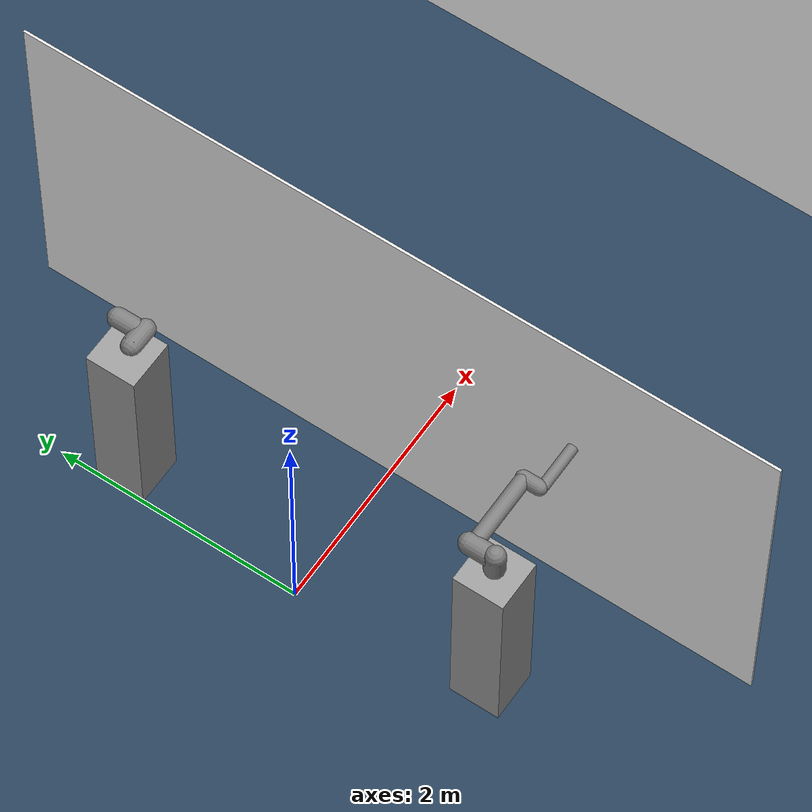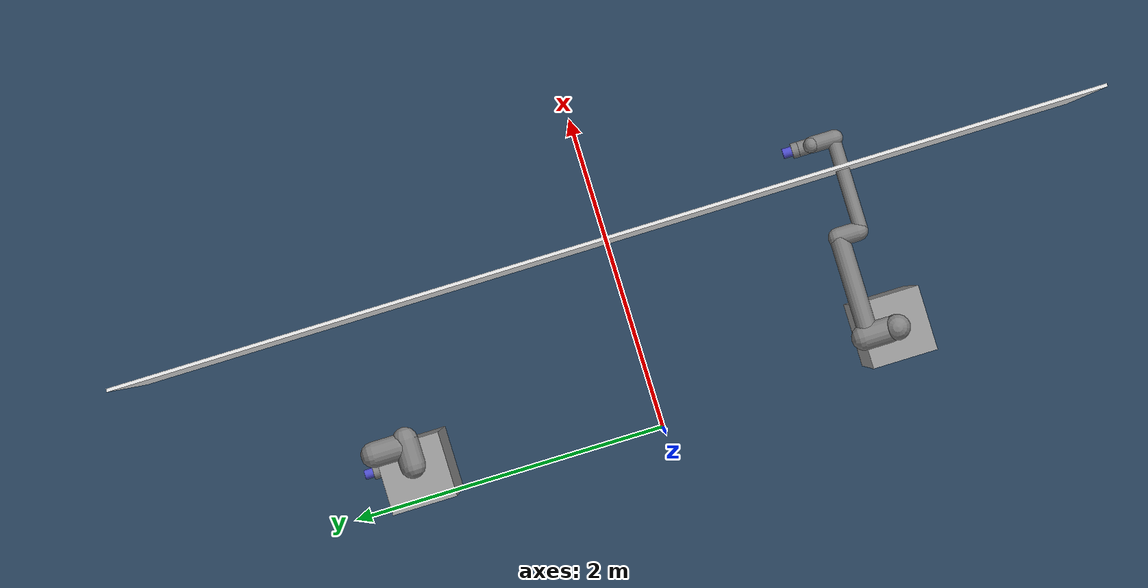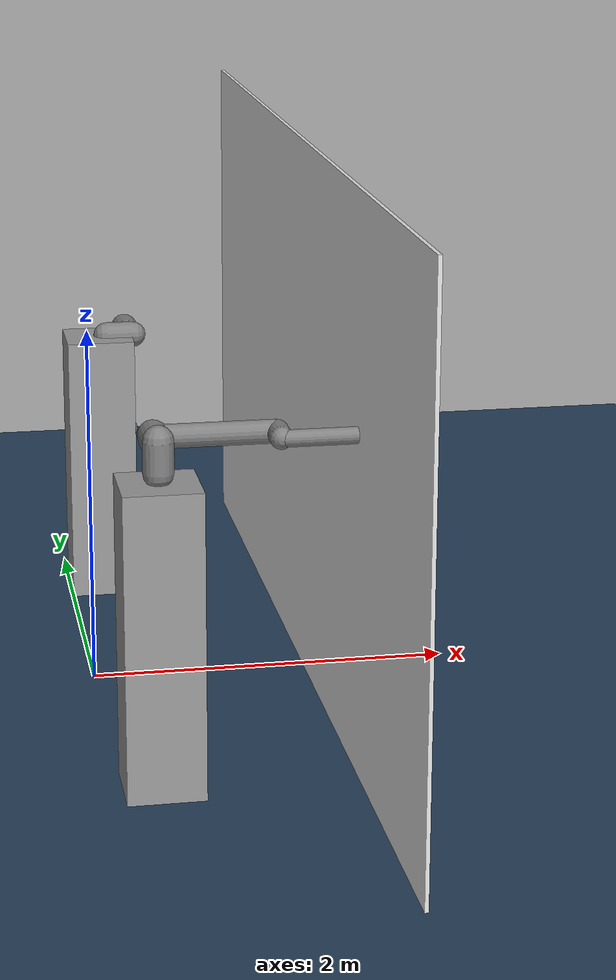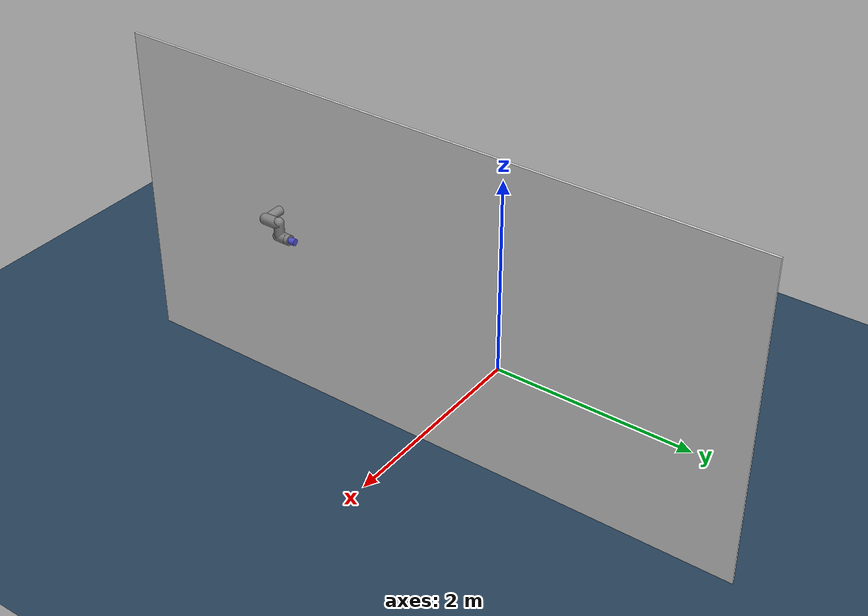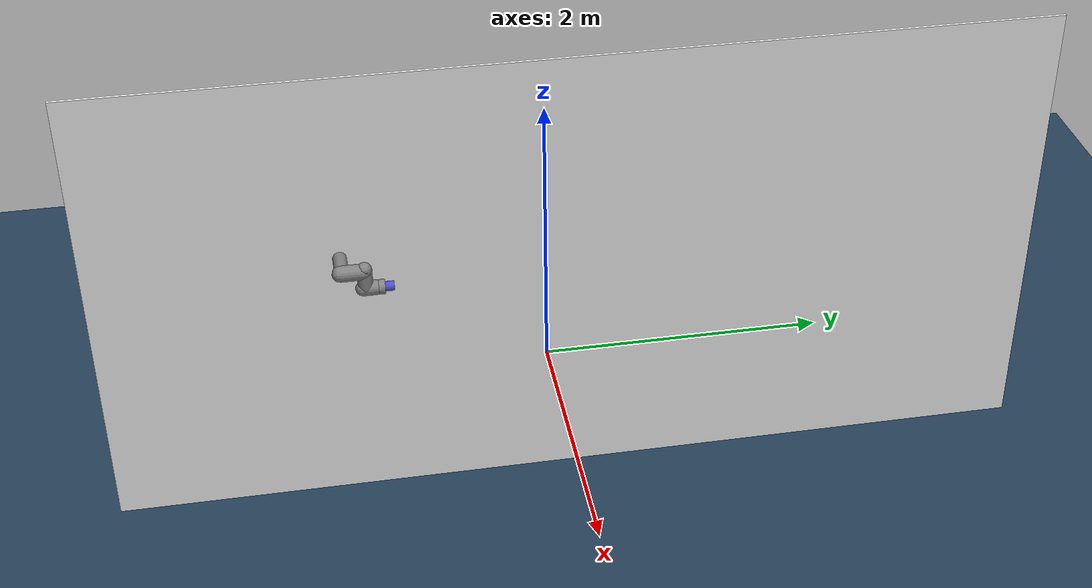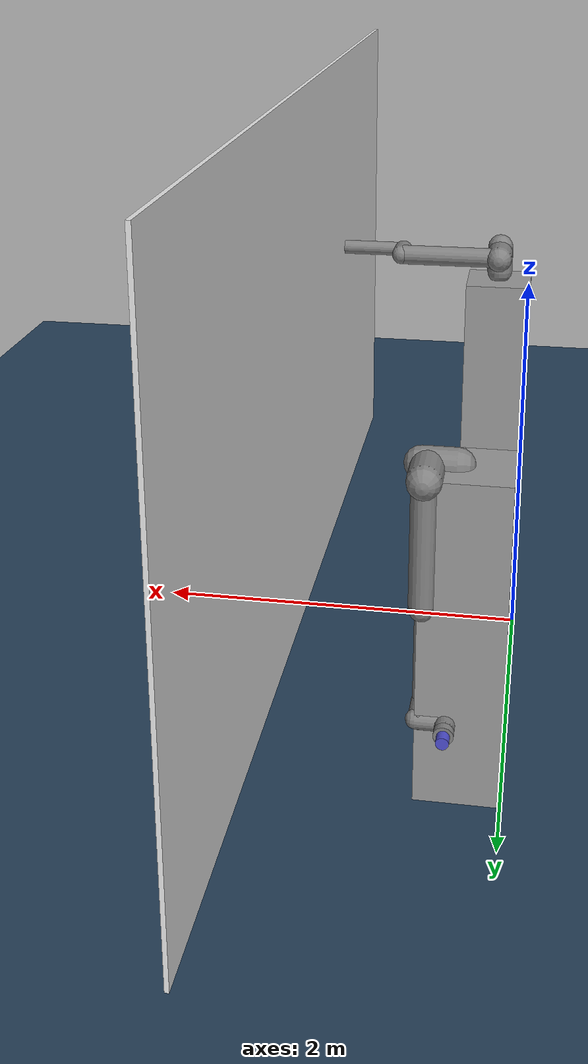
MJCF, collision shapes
<mujoco model="ur10_reach_comparison">
    <compiler angle="radian" meshdir="ur10e/assets" autolimits="true"/>

    <option gravity="0 0 -9.81" integrator="implicit"/>

    <visual>
        <global offwidth="1024" offheight="768"/>
    </visual>

    <asset>
        <texture type="skybox" builtin="gradient" rgb1="0.3 0.5 0.7" rgb2="0 0 0" width="512" height="512"/>
        <texture name="texplane" type="2d" builtin="checker" rgb1="0.2 0.3 0.4" rgb2="0.1 0.2 0.3" width="512" height="512" mark="cross" markrgb=".8 .8 .8"/>
        <material name="matplane" reflectance="0.3" texture="texplane" texrepeat="1 1" texuniform="true"/>
        <material name="wall" rgba="0.9 0.9 0.9 1" reflectance="0.2"/>

        <!-- UR10e materials -->
        <material name="black" rgba="0.033 0.033 0.033 1" specular="0.5" shininess="0.25"/>
        <material name="jointgray" rgba="0.278 0.278 0.278 1" specular="0.5" shininess="0.25"/>
        <material name="linkgray" rgba="0.82 0.82 0.82 1" specular="0.5" shininess="0.25"/>
        <material name="urblue" rgba="0.49 0.678 0.8 1" specular="0.5" shininess="0.25"/>

        <!-- UR10e meshes -->
        <mesh file="base_0.obj"/>
        <mesh file="base_1.obj"/>
        <mesh file="shoulder_0.obj"/>
        <mesh file="shoulder_1.obj"/>
        <mesh file="shoulder_2.obj"/>
        <mesh file="upperarm_0.obj"/>
        <mesh file="upperarm_1.obj"/>
        <mesh file="upperarm_2.obj"/>
        <mesh file="upperarm_3.obj"/>
        <mesh file="forearm_0.obj"/>
        <mesh file="forearm_1.obj"/>
        <mesh file="forearm_2.obj"/>
        <mesh file="forearm_3.obj"/>
        <mesh file="wrist1_0.obj"/>
        <mesh file="wrist1_1.obj"/>
        <mesh file="wrist1_2.obj"/>
        <mesh file="wrist2_0.obj"/>
        <mesh file="wrist2_1.obj"/>
        <mesh file="wrist2_2.obj"/>
        <mesh file="wrist3.obj"/>
    </asset>

    <!-- Define joint and actuator defaults -->
    <default>
        <default class="ur10e">
            <joint axis="0 1 0" range="-6.28319 6.28319" armature="0.1"/>
            <position ctrlrange="-6.2831 6.2831"/>
            <default class="size4">
                <joint damping="10"/>
            </default>
            <default class="size3">
                <joint damping="5"/>
                <default class="size3_limited">
                    <joint range="-3.1415 3.1415"/>
                </default>
            </default>
            <default class="size2">
                <joint damping="2"/>
            </default>
            <default class="visual">
                <geom type="mesh" contype="0" conaffinity="0" group="2"/>
            </default>
            <default class="collision">
                <geom type="capsule" group="3"/>
                <default class="eef_collision">
                    <geom type="cylinder"/>
                </default>
            </default>
            <site size="0.001" rgba="0.5 0.5 0.5 0.3" group="4"/>
        </default>
    </default>

    <worldbody>
        <!-- Lighting -->
        <light directional="true" diffuse=".8 .8 .8" specular=".2 .2 .2" pos="0 0 5" dir="0 0 -1"/>
        <light directional="true" diffuse=".8 .8 .8" specular=".2 .2 .2" pos="0 0 4" dir="0 0 -1" castshadow="false"/>

        <!-- Ground plane -->
        <geom name="ground" type="plane" size="5 5 0.1" material="matplane"/>

        <!-- Wall (YZ plane, facing X direction) -->
        <geom name="wall" type="box" pos="1.2 0 1.5" size="0.01 3.0 1.5" material="wall"/>

        <!-- Flat Mounted UR10 Robot (parallel to floor, perpendicular to wall) -->
        <body name="flat_base_block" pos="0.2 -1.5 0.8">
            <geom name="flat_block" type="box" size="0.2 0.2 0.8" rgba="0.6 0.6 0.6 1"/>

            <!-- Flat mounted UR10 robot -->
            <body name="flat_robot_base" pos="0 0 0.8" childclass="ur10e">
                <geom mesh="base_0" material="black" class="visual"/>
                <geom mesh="base_1" material="jointgray" class="visual"/>
                <body name="flat_shoulder_link" pos="0 0 0.181">
                    <inertial pos="0 0 0" mass="7.778" diaginertia="0.0314743 0.0314743 0.0218756"/>
                    <joint name="flat_shoulder_pan_joint" class="size4" axis="0 0 1"/>
                    <geom mesh="shoulder_0" material="urblue" class="visual"/>
                    <geom mesh="shoulder_1" material="black" class="visual"/>
                    <geom mesh="shoulder_2" material="jointgray" class="visual"/>
                    <geom class="collision" size="0.078 0.08" pos="0 0 -0.05"/>
                    <body name="flat_upper_arm_link" pos="0 0.176 0" quat="1 0 1 0">
                        <inertial pos="0 0 0.3065" mass="12.93" diaginertia="0.423074 0.423074 0.0363656"/>
                        <joint name="flat_shoulder_lift_joint" class="size4"/>
                        <geom mesh="upperarm_0" material="black" class="visual"/>
                        <geom mesh="upperarm_1" material="jointgray" class="visual"/>
                        <geom mesh="upperarm_2" material="urblue" class="visual"/>
                        <geom mesh="upperarm_3" material="linkgray" class="visual"/>
                        <geom class="collision" pos="0 -0.05 0" quat="1 1 0 0" size="0.078 0.08"/>
                        <geom class="collision" size="0.06 0.3" pos="0 0 0.3"/>
                        <body name="flat_forearm_link" pos="0 -0.137 0.613">
                            <inertial pos="0 0 0.2855" mass="3.87" diaginertia="0.11059 0.11059 0.0108844"/>
                            <joint name="flat_elbow_joint" class="size3_limited"/>
                            <geom mesh="forearm_0" material="urblue" class="visual"/>
                            <geom mesh="forearm_1" material="black" class="visual"/>
                            <geom mesh="forearm_2" material="jointgray" class="visual"/>
                            <geom mesh="forearm_3" material="linkgray" class="visual"/>
                            <geom class="collision" pos="0 0.08 0" quat="1 1 0 0" size="0.058 0.065"/>
                            <geom class="collision" size="0.043 0.28" pos="0 0 0.29"/>
                            <body name="flat_wrist_1_link" pos="0 0 0.571" quat="1 0 1 0">
                                <inertial pos="0 0.135 0" quat="0.5 0.5 -0.5 0.5" mass="1.96" diaginertia="0.0055125 0.00510825 0.00510825"/>
                                <joint name="flat_wrist_1_joint" class="size2"/>
                                <geom mesh="wrist1_0" material="black" class="visual"/>
                                <geom mesh="wrist1_1" material="urblue" class="visual"/>
                                <geom mesh="wrist1_2" material="jointgray" class="visual"/>
                                <geom class="collision" pos="0 0.06 0" quat="1 1 0 0" size="0.05 0.07"/>
                                <body name="flat_wrist_2_link" pos="0 0.135 0">
                                    <inertial pos="0 0 0.12" quat="0.5 0.5 -0.5 0.5" mass="1.96" diaginertia="0.0055125 0.00510825 0.00510825"/>
                                    <joint name="flat_wrist_2_joint" axis="0 0 1" class="size2"/>
                                    <geom mesh="wrist2_0" material="black" class="visual"/>
                                    <geom mesh="wrist2_1" material="urblue" class="visual"/>
                                    <geom mesh="wrist2_2" material="jointgray" class="visual"/>
                                    <geom class="collision" size="0.046 0.065" pos="0 0 0.05"/>
                                    <geom class="collision" pos="0 0.028 0.12" quat="1 1 0 0" size="0.046 0.043"/>
                                    <body name="flat_wrist_3_link" pos="0 0 0.12">
                                        <inertial pos="0 0.092 0" quat="0 1 -1 0" mass="0.202" diaginertia="0.000204525 0.000144346 0.000144346"/>
                                        <joint name="flat_wrist_3_joint" class="size2"/>
                                        <geom material="linkgray" mesh="wrist3" class="visual"/>
                                        <geom class="eef_collision" pos="0 0.097 0" quat="1 1 0 0" size="0.046 0.02"/>
                                        <site name="flat_ee" pos="0 0.12 0" rgba="1 0 0 0.5" size="0.01"/>

                                        <!-- Drywall finishing tool attachment for flat robot -->
                                        <body name="flat_tool" pos="0 0.12 0">
                                            <geom name="flat_tool_geom" type="cylinder" size="0.03 0.0525" rgba="0.3 0.3 0.8 1" pos="0 0 0" quat="0 0 0.7071068 0.7071068"/>
                                            <site name="flat_tool_tip" pos="0.105 0 0" rgba="1 0 0 1" size="0.005"/>
                                        </body>
                                    </body>
                                </body>
                            </body>
                        </body>
                    </body>
                </body>
            </body>
        </body>

        <!-- Perpendicular Mounted UR10 Robot (perpendicular to floor, parallel to wall) -->
        <body name="perp_base_block" pos="0.2 1.5 0.8">
            <geom name="perp_block" type="box" size="0.2 0.2 0.8" rgba="0.6 0.6 0.6 1"/>

            <!-- Perpendicular mounted UR10 robot (rotated 90 degrees around Y) -->
            <body name="perp_robot_base" pos="0 0 0.8" quat="0.7071068 0 0.7071068 0" childclass="ur10e">
                <geom mesh="base_0" material="black" class="visual"/>
                <geom mesh="base_1" material="jointgray" class="visual"/>
                <body name="perp_shoulder_link" pos="0 0 0.181">
                    <inertial pos="0 0 0" mass="7.778" diaginertia="0.0314743 0.0314743 0.0218756"/>
                    <joint name="perp_shoulder_pan_joint" class="size4" axis="0 0 1"/>
                    <geom mesh="shoulder_0" material="urblue" class="visual"/>
                    <geom mesh="shoulder_1" material="black" class="visual"/>
                    <geom mesh="shoulder_2" material="jointgray" class="visual"/>
                    <geom class="collision" size="0.078 0.08" pos="0 0 -0.05"/>
                    <body name="perp_upper_arm_link" pos="0 0.176 0" quat="1 0 1 0">
                        <inertial pos="0 0 0.3065" mass="12.93" diaginertia="0.423074 0.423074 0.0363656"/>
                        <joint name="perp_shoulder_lift_joint" class="size4"/>
                        <geom mesh="upperarm_0" material="black" class="visual"/>
                        <geom mesh="upperarm_1" material="jointgray" class="visual"/>
                        <geom mesh="upperarm_2" material="urblue" class="visual"/>
                        <geom mesh="upperarm_3" material="linkgray" class="visual"/>
                        <geom class="collision" pos="0 -0.05 0" quat="1 1 0 0" size="0.078 0.08"/>
                        <geom class="collision" size="0.06 0.3" pos="0 0 0.3"/>
                        <body name="perp_forearm_link" pos="0 -0.137 0.613">
                            <inertial pos="0 0 0.2855" mass="3.87" diaginertia="0.11059 0.11059 0.0108844"/>
                            <joint name="perp_elbow_joint" class="size3_limited"/>
                            <geom mesh="forearm_0" material="urblue" class="visual"/>
                            <geom mesh="forearm_1" material="black" class="visual"/>
                            <geom mesh="forearm_2" material="jointgray" class="visual"/>
                            <geom mesh="forearm_3" material="linkgray" class="visual"/>
                            <geom class="collision" pos="0 0.08 0" quat="1 1 0 0" size="0.058 0.065"/>
                            <geom class="collision" size="0.043 0.28" pos="0 0 0.29"/>
                            <body name="perp_wrist_1_link" pos="0 0 0.571" quat="1 0 1 0">
                                <inertial pos="0 0.135 0" quat="0.5 0.5 -0.5 0.5" mass="1.96" diaginertia="0.0055125 0.00510825 0.00510825"/>
                                <joint name="perp_wrist_1_joint" class="size2"/>
                                <geom mesh="wrist1_0" material="black" class="visual"/>
                                <geom mesh="wrist1_1" material="urblue" class="visual"/>
                                <geom mesh="wrist1_2" material="jointgray" class="visual"/>
                                <geom class="collision" pos="0 0.06 0" quat="1 1 0 0" size="0.05 0.07"/>
                                <body name="perp_wrist_2_link" pos="0 0.135 0">
                                    <inertial pos="0 0 0.12" quat="0.5 0.5 -0.5 0.5" mass="1.96" diaginertia="0.0055125 0.00510825 0.00510825"/>
                                    <joint name="perp_wrist_2_joint" axis="0 0 1" class="size2"/>
                                    <geom mesh="wrist2_0" material="black" class="visual"/>
                                    <geom mesh="wrist2_1" material="urblue" class="visual"/>
                                    <geom mesh="wrist2_2" material="jointgray" class="visual"/>
                                    <geom class="collision" size="0.046 0.065" pos="0 0 0.05"/>
                                    <geom class="collision" pos="0 0.028 0.12" quat="1 1 0 0" size="0.046 0.043"/>
                                    <body name="perp_wrist_3_link" pos="0 0 0.12">
                                        <inertial pos="0 0.092 0" quat="0 1 -1 0" mass="0.202" diaginertia="0.000204525 0.000144346 0.000144346"/>
                                        <joint name="perp_wrist_3_joint" class="size2"/>
                                        <geom material="linkgray" mesh="wrist3" class="visual"/>
                                        <geom class="eef_collision" pos="0 0.097 0" quat="1 1 0 0" size="0.046 0.02"/>
                                        <site name="perp_ee" pos="0 0.12 0" rgba="0 0 1 0.5" size="0.01"/>

                                        <!-- Drywall finishing tool attachment for perpendicular robot -->
                                        <body name="perp_tool" pos="0 0.12 0">
                                            <geom name="perp_tool_geom" type="cylinder" size="0.03 0.0525" rgba="0.3 0.3 0.8 1" pos="0 0 0" quat="0 0 0.7071068 0.7071068"/>
                                            <site name="perp_tool_tip" pos="0.105 0 0" rgba="0 0 1 1" size="0.005"/>
                                        </body>
                                    </body>
                                </body>
                            </body>
                        </body>
                    </body>
                </body>
            </body>
        </body>

        <!-- Visualization markers for reachable points -->
        <site name="flat_reach_point" group="3" pos="1.0 0 1.0" size="0.01" rgba="1 0 0 0.5" type="sphere"/>
        <site name="perp_reach_point" group="3" pos="1.0 0 1.0" size="0.01" rgba="0 0 1 0.5" type="sphere"/>
    </worldbody>

    <actuator>
        <!-- Flat robot actuators -->
        <position name="flat_shoulder_pan" joint="flat_shoulder_pan_joint" ctrlrange="-6.2831 6.2831"/>
        <position name="flat_shoulder_lift" joint="flat_shoulder_lift_joint" ctrlrange="-6.2831 6.2831"/>
        <position name="flat_elbow" joint="flat_elbow_joint" ctrlrange="-3.1415 3.1415"/>
        <position name="flat_wrist_1" joint="flat_wrist_1_joint" ctrlrange="-6.2831 6.2831"/>
        <position name="flat_wrist_2" joint="flat_wrist_2_joint" ctrlrange="-6.2831 6.2831"/>
        <position name="flat_wrist_3" joint="flat_wrist_3_joint" ctrlrange="-6.2831 6.2831"/>

        <!-- Perpendicular robot actuators -->
        <position name="perp_shoulder_pan" joint="perp_shoulder_pan_joint" ctrlrange="-6.2831 6.2831"/>
        <position name="perp_shoulder_lift" joint="perp_shoulder_lift_joint" ctrlrange="-6.2831 6.2831"/>
        <position name="perp_elbow" joint="perp_elbow_joint" ctrlrange="-3.1415 3.1415"/>
        <position name="perp_wrist_1" joint="perp_wrist_1_joint" ctrlrange="-6.2831 6.2831"/>
        <position name="perp_wrist_2" joint="perp_wrist_2_joint" ctrlrange="-6.2831 6.2831"/>
        <position name="perp_wrist_3" joint="perp_wrist_3_joint" ctrlrange="-6.2831 6.2831"/>
    </actuator>
</mujoco>
